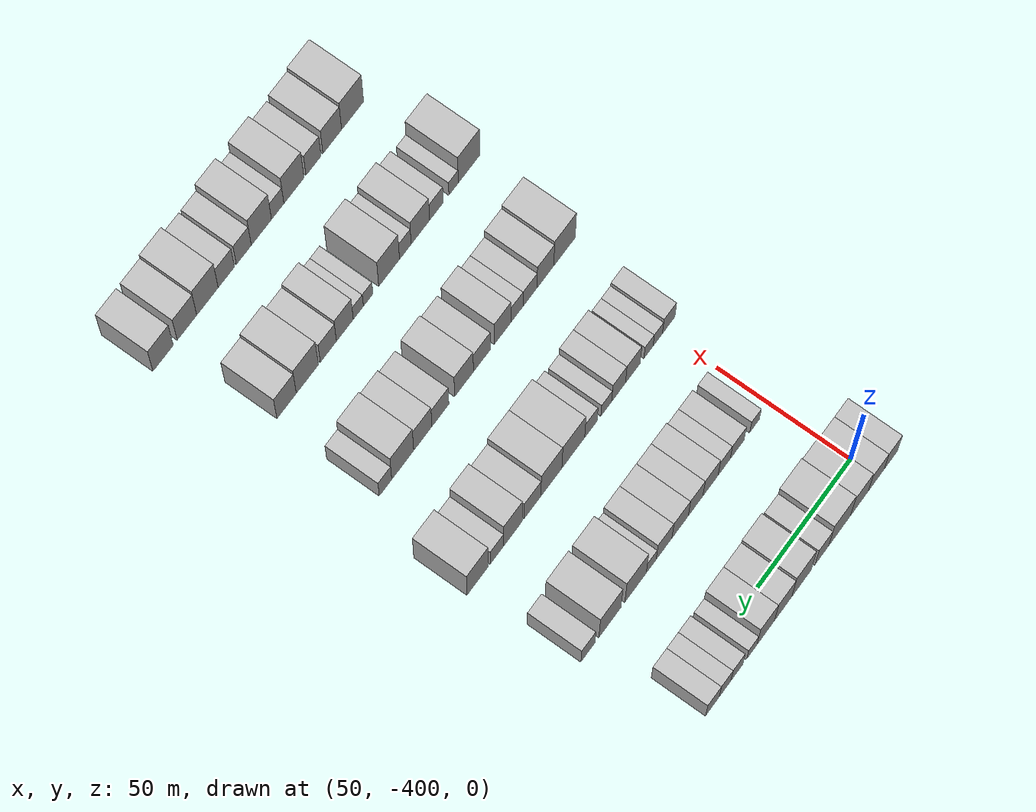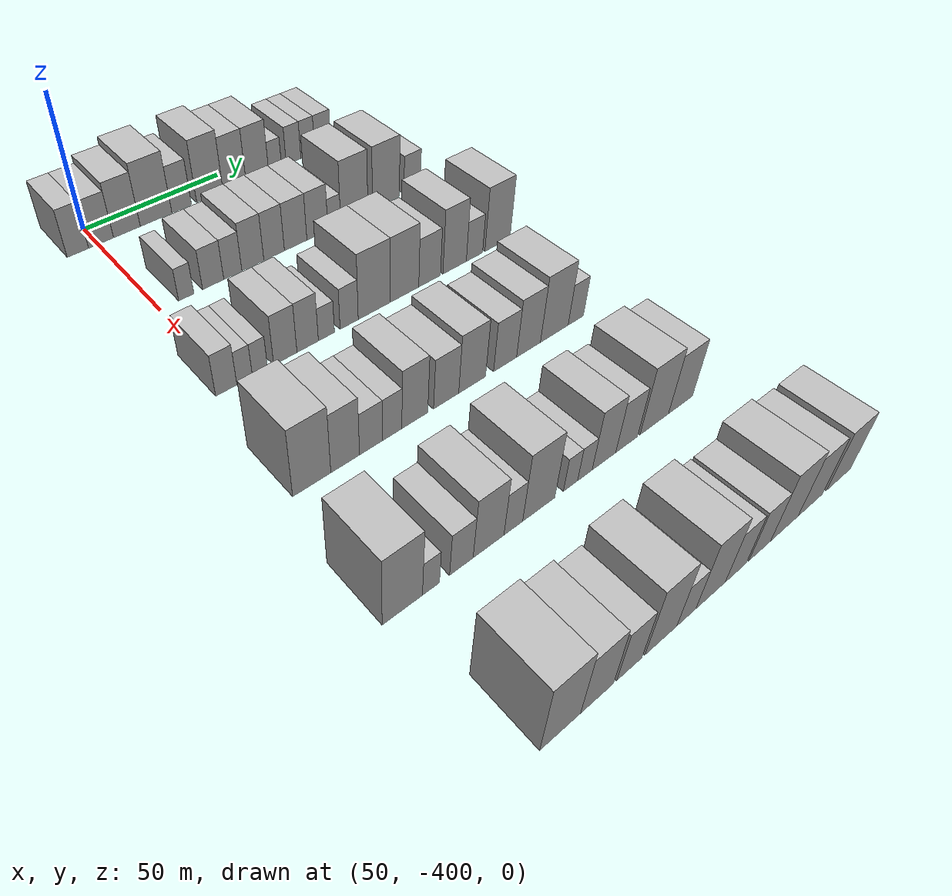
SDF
<sdf version="1.6">
 <world name="default">
  <model name="building_26">
   <static>1</static>
   <pose>50.0000 -406.8674 0 0.000000 0.000000 0.000000</pose>
   <link name="link">
    <pose>0 0 9.00 0 0 0</pose>
    <collision name="collision"><geometry><box><size>20.0000 7.2095 18.0000</size></box></geometry></collision>
    <visual name="visual">
     <cast_shadows>0</cast_shadows>
     <geometry><box><size>20.0000 7.2095 18.0000</size></box></geometry>
     <material>
      <script>
       <uri>model://HANNAS_wall/materials/scripts</uri>
       <uri>model://HANNAS_wall/materials/textures</uri>
       <name>vrc/HANNAS_wall</name>
      </script>
     </material>
    </visual>
   </link>
  </model>
  <model name="building_27">
   <static>1</static>
   <pose>50.0000 -398.9478 0 0.000000 0.000000 0.000000</pose>
   <link name="link">
    <pose>0 0 9.00 0 0 0</pose>
    <collision name="collision"><geometry><box><size>20.0000 8.6297 18.0000</size></box></geometry></collision>
    <visual name="visual">
     <cast_shadows>0</cast_shadows>
     <geometry><box><size>20.0000 8.6297 18.0000</size></box></geometry>
     <material>
      <script>
       <uri>model://HANNAS_wall/materials/scripts</uri>
       <uri>model://HANNAS_wall/materials/textures</uri>
       <name>vrc/HANNAS_wall</name>
      </script>
     </material>
    </visual>
   </link>
  </model>
  <model name="building_28">
   <static>1</static>
   <pose>50.0000 -389.8648 0 0.000000 0.000000 0.000000</pose>
   <link name="link">
    <pose>0 0 10.50 0 0 0</pose>
    <collision name="collision"><geometry><box><size>20.0000 9.5361 21.0000</size></box></geometry></collision>
    <visual name="visual">
     <cast_shadows>0</cast_shadows>
     <geometry><box><size>20.0000 9.5361 21.0000</size></box></geometry>
     <material>
      <script>
       <uri>model://HANNAS_wall/materials/scripts</uri>
       <uri>model://HANNAS_wall/materials/textures</uri>
       <name>vrc/HANNAS_wall</name>
      </script>
     </material>
    </visual>
   </link>
  </model>
  <model name="building_29">
   <static>1</static>
   <pose>50.0000 -379.2974 0 0.000000 0.000000 0.000000</pose>
   <link name="link">
    <pose>0 0 12.00 0 0 0</pose>
    <collision name="collision"><geometry><box><size>20.0000 11.5987 24.0000</size></box></geometry></collision>
    <visual name="visual">
     <cast_shadows>0</cast_shadows>
     <geometry><box><size>20.0000 11.5987 24.0000</size></box></geometry>
     <material>
      <script>
       <uri>model://HANNAS_wall/materials/scripts</uri>
       <uri>model://HANNAS_wall/materials/textures</uri>
       <name>vrc/HANNAS_wall</name>
      </script>
     </material>
    </visual>
   </link>
  </model>
  <model name="building_30">
   <static>1</static>
   <pose>50.0000 -369.7955 0 0.000000 0.000000 0.000000</pose>
   <link name="link">
    <pose>0 0 9.00 0 0 0</pose>
    <collision name="collision"><geometry><box><size>20.0000 7.4053 18.0000</size></box></geometry></collision>
    <visual name="visual">
     <cast_shadows>0</cast_shadows>
     <geometry><box><size>20.0000 7.4053 18.0000</size></box></geometry>
     <material>
      <script>
       <uri>model://HANNAS_wall/materials/scripts</uri>
       <uri>model://HANNAS_wall/materials/textures</uri>
       <name>vrc/HANNAS_wall</name>
      </script>
     </material>
    </visual>
   </link>
  </model>
  <model name="building_31">
   <static>1</static>
   <pose>50.0000 -358.9454 0 0.000000 0.000000 0.000000</pose>
   <link name="link">
    <pose>0 0 12.00 0 0 0</pose>
    <collision name="collision"><geometry><box><size>20.0000 10.2949 24.0000</size></box></geometry></collision>
    <visual name="visual">
     <cast_shadows>0</cast_shadows>
     <geometry><box><size>20.0000 10.2949 24.0000</size></box></geometry>
     <material>
      <script>
       <uri>model://HANNAS_wall/materials/scripts</uri>
       <uri>model://HANNAS_wall/materials/textures</uri>
       <name>vrc/HANNAS_wall</name>
      </script>
     </material>
    </visual>
   </link>
  </model>
  <model name="building_32">
   <static>1</static>
   <pose>50.0000 -349.2108 0 0.000000 0.000000 0.000000</pose>
   <link name="link">
    <pose>0 0 10.50 0 0 0</pose>
    <collision name="collision"><geometry><box><size>20.0000 9.1743 21.0000</size></box></geometry></collision>
    <visual name="visual">
     <cast_shadows>0</cast_shadows>
     <geometry><box><size>20.0000 9.1743 21.0000</size></box></geometry>
     <material>
      <script>
       <uri>model://HANNAS_wall/materials/scripts</uri>
       <uri>model://HANNAS_wall/materials/textures</uri>
       <name>vrc/HANNAS_wall</name>
      </script>
     </material>
    </visual>
   </link>
  </model>
  <model name="building_33">
   <static>1</static>
   <pose>50.0000 -339.9540 0 0.000000 0.000000 0.000000</pose>
   <link name="link">
    <pose>0 0 10.50 0 0 0</pose>
    <collision name="collision"><geometry><box><size>20.0000 9.3393 21.0000</size></box></geometry></collision>
    <visual name="visual">
     <cast_shadows>0</cast_shadows>
     <geometry><box><size>20.0000 9.3393 21.0000</size></box></geometry>
     <material>
      <script>
       <uri>model://HANNAS_wall/materials/scripts</uri>
       <uri>model://HANNAS_wall/materials/textures</uri>
       <name>vrc/HANNAS_wall</name>
      </script>
     </material>
    </visual>
   </link>
  </model>
  <model name="building_34">
   <static>1</static>
   <pose>50.0000 -332.5883 0 0.000000 0.000000 0.000000</pose>
   <link name="link">
    <pose>0 0 6.00 0 0 0</pose>
    <collision name="collision"><geometry><box><size>20.0000 5.3922 12.0000</size></box></geometry></collision>
    <visual name="visual">
     <cast_shadows>0</cast_shadows>
     <geometry><box><size>20.0000 5.3922 12.0000</size></box></geometry>
     <material>
      <script>
       <uri>model://HANNAS_wall/materials/scripts</uri>
       <uri>model://HANNAS_wall/materials/textures</uri>
       <name>vrc/HANNAS_wall</name>
      </script>
     </material>
    </visual>
   </link>
  </model>
  <model name="building_35">
   <static>1</static>
   <pose>50.0000 -324.7472 0 0.000000 0.000000 0.000000</pose>
   <link name="link">
    <pose>0 0 7.50 0 0 0</pose>
    <collision name="collision"><geometry><box><size>20.0000 6.2898 15.0000</size></box></geometry></collision>
    <visual name="visual">
     <cast_shadows>0</cast_shadows>
     <geometry><box><size>20.0000 6.2898 15.0000</size></box></geometry>
     <material>
      <script>
       <uri>model://HANNAS_wall/materials/scripts</uri>
       <uri>model://HANNAS_wall/materials/textures</uri>
       <name>vrc/HANNAS_wall</name>
      </script>
     </material>
    </visual>
   </link>
  </model>
  <model name="building_36">
   <static>1</static>
   <pose>50.0000 -318.5972 0 0.000000 0.000000 0.000000</pose>
   <link name="link">
    <pose>0 0 7.50 0 0 0</pose>
    <collision name="collision"><geometry><box><size>20.0000 6.0102 15.0000</size></box></geometry></collision>
    <visual name="visual">
     <cast_shadows>0</cast_shadows>
     <geometry><box><size>20.0000 6.0102 15.0000</size></box></geometry>
     <material>
      <script>
       <uri>model://HANNAS_wall/materials/scripts</uri>
       <uri>model://HANNAS_wall/materials/textures</uri>
       <name>vrc/HANNAS_wall</name>
      </script>
     </material>
    </visual>
   </link>
  </model>
  <model name="building_37">
   <static>1</static>
   <pose>50.0000 -312.0216 0 0.000000 0.000000 0.000000</pose>
   <link name="link">
    <pose>0 0 7.50 0 0 0</pose>
    <collision name="collision"><geometry><box><size>20.0000 7.1410 15.0000</size></box></geometry></collision>
    <visual name="visual">
     <cast_shadows>0</cast_shadows>
     <geometry><box><size>20.0000 7.1410 15.0000</size></box></geometry>
     <material>
      <script>
       <uri>model://HANNAS_wall/materials/scripts</uri>
       <uri>model://HANNAS_wall/materials/textures</uri>
       <name>vrc/HANNAS_wall</name>
      </script>
     </material>
    </visual>
   </link>
  </model>
  <model name="building_160">
   <static>1</static>
   <pose>90.0000 -391.2462 0 0.000000 0.000000 0.000000</pose>
   <link name="link">
    <pose>0 0 6.00 0 0 0</pose>
    <collision name="collision"><geometry><box><size>20.0000 5.1746 12.0000</size></box></geometry></collision>
    <visual name="visual">
     <cast_shadows>0</cast_shadows>
     <geometry><box><size>20.0000 5.1746 12.0000</size></box></geometry>
     <material>
      <script>
       <uri>model://HANNAS_wall/materials/scripts</uri>
       <uri>model://HANNAS_wall/materials/textures</uri>
       <name>vrc/HANNAS_wall</name>
      </script>
     </material>
    </visual>
   </link>
  </model>
  <model name="building_161">
   <static>1</static>
   <pose>90.0000 -381.9610 0 0.000000 0.000000 0.000000</pose>
   <link name="link">
    <pose>0 0 7.50 0 0 0</pose>
    <collision name="collision"><geometry><box><size>20.0000 7.3958 15.0000</size></box></geometry></collision>
    <visual name="visual">
     <cast_shadows>0</cast_shadows>
     <geometry><box><size>20.0000 7.3958 15.0000</size></box></geometry>
     <material>
      <script>
       <uri>model://HANNAS_wall/materials/scripts</uri>
       <uri>model://HANNAS_wall/materials/textures</uri>
       <name>vrc/HANNAS_wall</name>
      </script>
     </material>
    </visual>
   </link>
  </model>
  <model name="building_162">
   <static>1</static>
   <pose>90.0000 -375.0230 0 0.000000 0.000000 0.000000</pose>
   <link name="link">
    <pose>0 0 7.50 0 0 0</pose>
    <collision name="collision"><geometry><box><size>20.0000 6.4801 15.0000</size></box></geometry></collision>
    <visual name="visual">
     <cast_shadows>0</cast_shadows>
     <geometry><box><size>20.0000 6.4801 15.0000</size></box></geometry>
     <material>
      <script>
       <uri>model://HANNAS_wall/materials/scripts</uri>
       <uri>model://HANNAS_wall/materials/textures</uri>
       <name>vrc/HANNAS_wall</name>
      </script>
     </material>
    </visual>
   </link>
  </model>
  <model name="building_163">
   <static>1</static>
   <pose>90.0000 -367.7624 0 0.000000 0.000000 0.000000</pose>
   <link name="link">
    <pose>0 0 9.00 0 0 0</pose>
    <collision name="collision"><geometry><box><size>20.0000 8.0411 18.0000</size></box></geometry></collision>
    <visual name="visual">
     <cast_shadows>0</cast_shadows>
     <geometry><box><size>20.0000 8.0411 18.0000</size></box></geometry>
     <material>
      <script>
       <uri>model://HANNAS_wall/materials/scripts</uri>
       <uri>model://HANNAS_wall/materials/textures</uri>
       <name>vrc/HANNAS_wall</name>
      </script>
     </material>
    </visual>
   </link>
  </model>
  <model name="building_164">
   <static>1</static>
   <pose>90.0000 -359.8854 0 0.000000 0.000000 0.000000</pose>
   <link name="link">
    <pose>0 0 9.00 0 0 0</pose>
    <collision name="collision"><geometry><box><size>20.0000 7.7129 18.0000</size></box></geometry></collision>
    <visual name="visual">
     <cast_shadows>0</cast_shadows>
     <geometry><box><size>20.0000 7.7129 18.0000</size></box></geometry>
     <material>
      <script>
       <uri>model://HANNAS_wall/materials/scripts</uri>
       <uri>model://HANNAS_wall/materials/textures</uri>
       <name>vrc/HANNAS_wall</name>
      </script>
     </material>
    </visual>
   </link>
  </model>
  <model name="building_165">
   <static>1</static>
   <pose>90.0000 -351.7106 0 0.000000 0.000000 0.000000</pose>
   <link name="link">
    <pose>0 0 9.00 0 0 0</pose>
    <collision name="collision"><geometry><box><size>20.0000 8.6368 18.0000</size></box></geometry></collision>
    <visual name="visual">
     <cast_shadows>0</cast_shadows>
     <geometry><box><size>20.0000 8.6368 18.0000</size></box></geometry>
     <material>
      <script>
       <uri>model://HANNAS_wall/materials/scripts</uri>
       <uri>model://HANNAS_wall/materials/textures</uri>
       <name>vrc/HANNAS_wall</name>
      </script>
     </material>
    </visual>
   </link>
  </model>
  <model name="building_166">
   <static>1</static>
   <pose>90.0000 -343.2505 0 0.000000 0.000000 0.000000</pose>
   <link name="link">
    <pose>0 0 9.00 0 0 0</pose>
    <collision name="collision"><geometry><box><size>20.0000 8.2834 18.0000</size></box></geometry></collision>
    <visual name="visual">
     <cast_shadows>0</cast_shadows>
     <geometry><box><size>20.0000 8.2834 18.0000</size></box></geometry>
     <material>
      <script>
       <uri>model://HANNAS_wall/materials/scripts</uri>
       <uri>model://HANNAS_wall/materials/textures</uri>
       <name>vrc/HANNAS_wall</name>
      </script>
     </material>
    </visual>
   </link>
  </model>
  <model name="building_167">
   <static>1</static>
   <pose>90.0000 -336.5271 0 0.000000 0.000000 0.000000</pose>
   <link name="link">
    <pose>0 0 6.00 0 0 0</pose>
    <collision name="collision"><geometry><box><size>20.0000 5.1634 12.0000</size></box></geometry></collision>
    <visual name="visual">
     <cast_shadows>0</cast_shadows>
     <geometry><box><size>20.0000 5.1634 12.0000</size></box></geometry>
     <material>
      <script>
       <uri>model://HANNAS_wall/materials/scripts</uri>
       <uri>model://HANNAS_wall/materials/textures</uri>
       <name>vrc/HANNAS_wall</name>
      </script>
     </material>
    </visual>
   </link>
  </model>
  <model name="building_168">
   <static>1</static>
   <pose>90.0000 -328.3290 0 0.000000 0.000000 0.000000</pose>
   <link name="link">
    <pose>0 0 12.00 0 0 0</pose>
    <collision name="collision"><geometry><box><size>20.0000 11.2327 24.0000</size></box></geometry></collision>
    <visual name="visual">
     <cast_shadows>0</cast_shadows>
     <geometry><box><size>20.0000 11.2327 24.0000</size></box></geometry>
     <material>
      <script>
       <uri>model://HANNAS_wall/materials/scripts</uri>
       <uri>model://HANNAS_wall/materials/textures</uri>
       <name>vrc/HANNAS_wall</name>
      </script>
     </material>
    </visual>
   </link>
  </model>
  <model name="building_169">
   <static>1</static>
   <pose>90.0000 -314.9431 0 0.000000 0.000000 0.000000</pose>
   <link name="link">
    <pose>0 0 12.00 0 0 0</pose>
    <collision name="collision"><geometry><box><size>20.0000 11.5390 24.0000</size></box></geometry></collision>
    <visual name="visual">
     <cast_shadows>0</cast_shadows>
     <geometry><box><size>20.0000 11.5390 24.0000</size></box></geometry>
     <material>
      <script>
       <uri>model://HANNAS_wall/materials/scripts</uri>
       <uri>model://HANNAS_wall/materials/textures</uri>
       <name>vrc/HANNAS_wall</name>
      </script>
     </material>
    </visual>
   </link>
  </model>
  <model name="building_170">
   <static>1</static>
   <pose>90.0000 -303.5288 0 0.000000 0.000000 0.000000</pose>
   <link name="link">
    <pose>0 0 7.50 0 0 0</pose>
    <collision name="collision"><geometry><box><size>20.0000 7.2896 15.0000</size></box></geometry></collision>
    <visual name="visual">
     <cast_shadows>0</cast_shadows>
     <geometry><box><size>20.0000 7.2896 15.0000</size></box></geometry>
     <material>
      <script>
       <uri>model://HANNAS_wall/materials/scripts</uri>
       <uri>model://HANNAS_wall/materials/textures</uri>
       <name>vrc/HANNAS_wall</name>
      </script>
     </material>
    </visual>
   </link>
  </model>
  <model name="building_297">
   <static>1</static>
   <pose>130.0000 -402.1752 0 0.000000 0.000000 0.000000</pose>
   <link name="link">
    <pose>0 0 7.50 0 0 0</pose>
    <collision name="collision"><geometry><box><size>20.0000 6.6384 15.0000</size></box></geometry></collision>
    <visual name="visual">
     <cast_shadows>0</cast_shadows>
     <geometry><box><size>20.0000 6.6384 15.0000</size></box></geometry>
     <material>
      <script>
       <uri>model://HANNAS_wall/materials/scripts</uri>
       <uri>model://HANNAS_wall/materials/textures</uri>
       <name>vrc/HANNAS_wall</name>
      </script>
     </material>
    </visual>
   </link>
  </model>
  <model name="building_298">
   <static>1</static>
   <pose>130.0000 -396.3769 0 0.000000 0.000000 0.000000</pose>
   <link name="link">
    <pose>0 0 6.00 0 0 0</pose>
    <collision name="collision"><geometry><box><size>20.0000 4.9581 12.0000</size></box></geometry></collision>
    <visual name="visual">
     <cast_shadows>0</cast_shadows>
     <geometry><box><size>20.0000 4.9581 12.0000</size></box></geometry>
     <material>
      <script>
       <uri>model://HANNAS_wall/materials/scripts</uri>
       <uri>model://HANNAS_wall/materials/textures</uri>
       <name>vrc/HANNAS_wall</name>
      </script>
     </material>
    </visual>
   </link>
  </model>
  <model name="building_299">
   <static>1</static>
   <pose>130.0000 -391.4261 0 0.000000 0.000000 0.000000</pose>
   <link name="link">
    <pose>0 0 6.00 0 0 0</pose>
    <collision name="collision"><geometry><box><size>20.0000 4.9437 12.0000</size></box></geometry></collision>
    <visual name="visual">
     <cast_shadows>0</cast_shadows>
     <geometry><box><size>20.0000 4.9437 12.0000</size></box></geometry>
     <material>
      <script>
       <uri>model://HANNAS_wall/materials/scripts</uri>
       <uri>model://HANNAS_wall/materials/textures</uri>
       <name>vrc/HANNAS_wall</name>
      </script>
     </material>
    </visual>
   </link>
  </model>
  <model name="building_300">
   <static>1</static>
   <pose>130.0000 -383.0668 0 0.000000 0.000000 0.000000</pose>
   <link name="link">
    <pose>0 0 9.00 0 0 0</pose>
    <collision name="collision"><geometry><box><size>20.0000 7.7748 18.0000</size></box></geometry></collision>
    <visual name="visual">
     <cast_shadows>0</cast_shadows>
     <geometry><box><size>20.0000 7.7748 18.0000</size></box></geometry>
     <material>
      <script>
       <uri>model://HANNAS_wall/materials/scripts</uri>
       <uri>model://HANNAS_wall/materials/textures</uri>
       <name>vrc/HANNAS_wall</name>
      </script>
     </material>
    </visual>
   </link>
  </model>
  <model name="building_301">
   <static>1</static>
   <pose>130.0000 -375.5032 0 0.000000 0.000000 0.000000</pose>
   <link name="link">
    <pose>0 0 9.00 0 0 0</pose>
    <collision name="collision"><geometry><box><size>20.0000 7.3524 18.0000</size></box></geometry></collision>
    <visual name="visual">
     <cast_shadows>0</cast_shadows>
     <geometry><box><size>20.0000 7.3524 18.0000</size></box></geometry>
     <material>
      <script>
       <uri>model://HANNAS_wall/materials/scripts</uri>
       <uri>model://HANNAS_wall/materials/textures</uri>
       <name>vrc/HANNAS_wall</name>
      </script>
     </material>
    </visual>
   </link>
  </model>
  <model name="building_302">
   <static>1</static>
   <pose>130.0000 -369.0002 0 0.000000 0.000000 0.000000</pose>
   <link name="link">
    <pose>0 0 6.00 0 0 0</pose>
    <collision name="collision"><geometry><box><size>20.0000 5.6535 12.0000</size></box></geometry></collision>
    <visual name="visual">
     <cast_shadows>0</cast_shadows>
     <geometry><box><size>20.0000 5.6535 12.0000</size></box></geometry>
     <material>
      <script>
       <uri>model://HANNAS_wall/materials/scripts</uri>
       <uri>model://HANNAS_wall/materials/textures</uri>
       <name>vrc/HANNAS_wall</name>
      </script>
     </material>
    </visual>
   </link>
  </model>
  <model name="building_303">
   <static>1</static>
   <pose>130.0000 -360.8951 0 0.000000 0.000000 0.000000</pose>
   <link name="link">
    <pose>0 0 7.50 0 0 0</pose>
    <collision name="collision"><geometry><box><size>20.0000 6.5567 15.0000</size></box></geometry></collision>
    <visual name="visual">
     <cast_shadows>0</cast_shadows>
     <geometry><box><size>20.0000 6.5567 15.0000</size></box></geometry>
     <material>
      <script>
       <uri>model://HANNAS_wall/materials/scripts</uri>
       <uri>model://HANNAS_wall/materials/textures</uri>
       <name>vrc/HANNAS_wall</name>
      </script>
     </material>
    </visual>
   </link>
  </model>
  <model name="building_304">
   <static>1</static>
   <pose>130.0000 -351.6429 0 0.000000 0.000000 0.000000</pose>
   <link name="link">
    <pose>0 0 12.00 0 0 0</pose>
    <collision name="collision"><geometry><box><size>20.0000 11.9477 24.0000</size></box></geometry></collision>
    <visual name="visual">
     <cast_shadows>0</cast_shadows>
     <geometry><box><size>20.0000 11.9477 24.0000</size></box></geometry>
     <material>
      <script>
       <uri>model://HANNAS_wall/materials/scripts</uri>
       <uri>model://HANNAS_wall/materials/textures</uri>
       <name>vrc/HANNAS_wall</name>
      </script>
     </material>
    </visual>
   </link>
  </model>
  <model name="building_305">
   <static>1</static>
   <pose>130.0000 -340.1544 0 0.000000 0.000000 0.000000</pose>
   <link name="link">
    <pose>0 0 12.00 0 0 0</pose>
    <collision name="collision"><geometry><box><size>20.0000 11.0293 24.0000</size></box></geometry></collision>
    <visual name="visual">
     <cast_shadows>0</cast_shadows>
     <geometry><box><size>20.0000 11.0293 24.0000</size></box></geometry>
     <material>
      <script>
       <uri>model://HANNAS_wall/materials/scripts</uri>
       <uri>model://HANNAS_wall/materials/textures</uri>
       <name>vrc/HANNAS_wall</name>
      </script>
     </material>
    </visual>
   </link>
  </model>
  <model name="building_306">
   <static>1</static>
   <pose>130.0000 -330.2992 0 0.000000 0.000000 0.000000</pose>
   <link name="link">
    <pose>0 0 9.00 0 0 0</pose>
    <collision name="collision"><geometry><box><size>20.0000 8.6812 18.0000</size></box></geometry></collision>
    <visual name="visual">
     <cast_shadows>0</cast_shadows>
     <geometry><box><size>20.0000 8.6812 18.0000</size></box></geometry>
     <material>
      <script>
       <uri>model://HANNAS_wall/materials/scripts</uri>
       <uri>model://HANNAS_wall/materials/textures</uri>
       <name>vrc/HANNAS_wall</name>
      </script>
     </material>
    </visual>
   </link>
  </model>
  <model name="building_307">
   <static>1</static>
   <pose>130.0000 -320.1224 0 0.000000 0.000000 0.000000</pose>
   <link name="link">
    <pose>0 0 12.00 0 0 0</pose>
    <collision name="collision"><geometry><box><size>20.0000 9.6724 24.0000</size></box></geometry></collision>
    <visual name="visual">
     <cast_shadows>0</cast_shadows>
     <geometry><box><size>20.0000 9.6724 24.0000</size></box></geometry>
     <material>
      <script>
       <uri>model://HANNAS_wall/materials/scripts</uri>
       <uri>model://HANNAS_wall/materials/textures</uri>
       <name>vrc/HANNAS_wall</name>
      </script>
     </material>
    </visual>
   </link>
  </model>
  <model name="building_308">
   <static>1</static>
   <pose>130.0000 -311.8371 0 0.000000 0.000000 0.000000</pose>
   <link name="link">
    <pose>0 0 7.50 0 0 0</pose>
    <collision name="collision"><geometry><box><size>20.0000 6.8982 15.0000</size></box></geometry></collision>
    <visual name="visual">
     <cast_shadows>0</cast_shadows>
     <geometry><box><size>20.0000 6.8982 15.0000</size></box></geometry>
     <material>
      <script>
       <uri>model://HANNAS_wall/materials/scripts</uri>
       <uri>model://HANNAS_wall/materials/textures</uri>
       <name>vrc/HANNAS_wall</name>
      </script>
     </material>
    </visual>
   </link>
  </model>
  <model name="building_309">
   <static>1</static>
   <pose>130.0000 -301.9055 0 0.000000 0.000000 0.000000</pose>
   <link name="link">
    <pose>0 0 12.00 0 0 0</pose>
    <collision name="collision"><geometry><box><size>20.0000 10.9650 24.0000</size></box></geometry></collision>
    <visual name="visual">
     <cast_shadows>0</cast_shadows>
     <geometry><box><size>20.0000 10.9650 24.0000</size></box></geometry>
     <material>
      <script>
       <uri>model://HANNAS_wall/materials/scripts</uri>
       <uri>model://HANNAS_wall/materials/textures</uri>
       <name>vrc/HANNAS_wall</name>
      </script>
     </material>
    </visual>
   </link>
  </model>
  <model name="building_442">
   <static>1</static>
   <pose>170.0000 -402.6923 0 0.000000 0.000000 0.000000</pose>
   <link name="link">
    <pose>0 0 12.00 0 0 0</pose>
    <collision name="collision"><geometry><box><size>20.0000 11.4159 24.0000</size></box></geometry></collision>
    <visual name="visual">
     <cast_shadows>0</cast_shadows>
     <geometry><box><size>20.0000 11.4159 24.0000</size></box></geometry>
     <material>
      <script>
       <uri>model://HANNAS_wall/materials/scripts</uri>
       <uri>model://HANNAS_wall/materials/textures</uri>
       <name>vrc/HANNAS_wall</name>
      </script>
     </material>
    </visual>
   </link>
  </model>
  <model name="building_443">
   <static>1</static>
   <pose>170.0000 -392.5244 0 0.000000 0.000000 0.000000</pose>
   <link name="link">
    <pose>0 0 10.50 0 0 0</pose>
    <collision name="collision"><geometry><box><size>20.0000 8.9201 21.0000</size></box></geometry></collision>
    <visual name="visual">
     <cast_shadows>0</cast_shadows>
     <geometry><box><size>20.0000 8.9201 21.0000</size></box></geometry>
     <material>
      <script>
       <uri>model://HANNAS_wall/materials/scripts</uri>
       <uri>model://HANNAS_wall/materials/textures</uri>
       <name>vrc/HANNAS_wall</name>
      </script>
     </material>
    </visual>
   </link>
  </model>
  <model name="building_444">
   <static>1</static>
   <pose>170.0000 -384.3691 0 0.000000 0.000000 0.000000</pose>
   <link name="link">
    <pose>0 0 7.50 0 0 0</pose>
    <collision name="collision"><geometry><box><size>20.0000 7.3904 15.0000</size></box></geometry></collision>
    <visual name="visual">
     <cast_shadows>0</cast_shadows>
     <geometry><box><size>20.0000 7.3904 15.0000</size></box></geometry>
     <material>
      <script>
       <uri>model://HANNAS_wall/materials/scripts</uri>
       <uri>model://HANNAS_wall/materials/textures</uri>
       <name>vrc/HANNAS_wall</name>
      </script>
     </material>
    </visual>
   </link>
  </model>
  <model name="building_445">
   <static>1</static>
   <pose>170.0000 -377.5013 0 0.000000 0.000000 0.000000</pose>
   <link name="link">
    <pose>0 0 7.50 0 0 0</pose>
    <collision name="collision"><geometry><box><size>20.0000 6.3452 15.0000</size></box></geometry></collision>
    <visual name="visual">
     <cast_shadows>0</cast_shadows>
     <geometry><box><size>20.0000 6.3452 15.0000</size></box></geometry>
     <material>
      <script>
       <uri>model://HANNAS_wall/materials/scripts</uri>
       <uri>model://HANNAS_wall/materials/textures</uri>
       <name>vrc/HANNAS_wall</name>
      </script>
     </material>
    </visual>
   </link>
  </model>
  <model name="building_446">
   <static>1</static>
   <pose>170.0000 -369.9328 0 0.000000 0.000000 0.000000</pose>
   <link name="link">
    <pose>0 0 10.50 0 0 0</pose>
    <collision name="collision"><geometry><box><size>20.0000 8.7918 21.0000</size></box></geometry></collision>
    <visual name="visual">
     <cast_shadows>0</cast_shadows>
     <geometry><box><size>20.0000 8.7918 21.0000</size></box></geometry>
     <material>
      <script>
       <uri>model://HANNAS_wall/materials/scripts</uri>
       <uri>model://HANNAS_wall/materials/textures</uri>
       <name>vrc/HANNAS_wall</name>
      </script>
     </material>
    </visual>
   </link>
  </model>
  <model name="building_447">
   <static>1</static>
   <pose>170.0000 -359.0872 0 0.000000 0.000000 0.000000</pose>
   <link name="link">
    <pose>0 0 9.00 0 0 0</pose>
    <collision name="collision"><geometry><box><size>20.0000 8.8994 18.0000</size></box></geometry></collision>
    <visual name="visual">
     <cast_shadows>0</cast_shadows>
     <geometry><box><size>20.0000 8.8994 18.0000</size></box></geometry>
     <material>
      <script>
       <uri>model://HANNAS_wall/materials/scripts</uri>
       <uri>model://HANNAS_wall/materials/textures</uri>
       <name>vrc/HANNAS_wall</name>
      </script>
     </material>
    </visual>
   </link>
  </model>
  <model name="building_448">
   <static>1</static>
   <pose>170.0000 -349.7289 0 0.000000 0.000000 0.000000</pose>
   <link name="link">
    <pose>0 0 10.50 0 0 0</pose>
    <collision name="collision"><geometry><box><size>20.0000 9.8173 21.0000</size></box></geometry></collision>
    <visual name="visual">
     <cast_shadows>0</cast_shadows>
     <geometry><box><size>20.0000 9.8173 21.0000</size></box></geometry>
     <material>
      <script>
       <uri>model://HANNAS_wall/materials/scripts</uri>
       <uri>model://HANNAS_wall/materials/textures</uri>
       <name>vrc/HANNAS_wall</name>
      </script>
     </material>
    </visual>
   </link>
  </model>
  <model name="building_449">
   <static>1</static>
   <pose>170.0000 -337.4245 0 0.000000 0.000000 0.000000</pose>
   <link name="link">
    <pose>0 0 9.00 0 0 0</pose>
    <collision name="collision"><geometry><box><size>20.0000 8.7915 18.0000</size></box></geometry></collision>
    <visual name="visual">
     <cast_shadows>0</cast_shadows>
     <geometry><box><size>20.0000 8.7915 18.0000</size></box></geometry>
     <material>
      <script>
       <uri>model://HANNAS_wall/materials/scripts</uri>
       <uri>model://HANNAS_wall/materials/textures</uri>
       <name>vrc/HANNAS_wall</name>
      </script>
     </material>
    </visual>
   </link>
  </model>
  <model name="building_450">
   <static>1</static>
   <pose>170.0000 -328.3199 0 0.000000 0.000000 0.000000</pose>
   <link name="link">
    <pose>0 0 10.50 0 0 0</pose>
    <collision name="collision"><geometry><box><size>20.0000 9.4178 21.0000</size></box></geometry></collision>
    <visual name="visual">
     <cast_shadows>0</cast_shadows>
     <geometry><box><size>20.0000 9.4178 21.0000</size></box></geometry>
     <material>
      <script>
       <uri>model://HANNAS_wall/materials/scripts</uri>
       <uri>model://HANNAS_wall/materials/textures</uri>
       <name>vrc/HANNAS_wall</name>
      </script>
     </material>
    </visual>
   </link>
  </model>
  <model name="building_451">
   <static>1</static>
   <pose>170.0000 -317.9349 0 0.000000 0.000000 0.000000</pose>
   <link name="link">
    <pose>0 0 12.00 0 0 0</pose>
    <collision name="collision"><geometry><box><size>20.0000 11.3520 24.0000</size></box></geometry></collision>
    <visual name="visual">
     <cast_shadows>0</cast_shadows>
     <geometry><box><size>20.0000 11.3520 24.0000</size></box></geometry>
     <material>
      <script>
       <uri>model://HANNAS_wall/materials/scripts</uri>
       <uri>model://HANNAS_wall/materials/textures</uri>
       <name>vrc/HANNAS_wall</name>
      </script>
     </material>
    </visual>
   </link>
  </model>
  <model name="building_452">
   <static>1</static>
   <pose>170.0000 -309.0416 0 0.000000 0.000000 0.000000</pose>
   <link name="link">
    <pose>0 0 7.50 0 0 0</pose>
    <collision name="collision"><geometry><box><size>20.0000 6.4346 15.0000</size></box></geometry></collision>
    <visual name="visual">
     <cast_shadows>0</cast_shadows>
     <geometry><box><size>20.0000 6.4346 15.0000</size></box></geometry>
     <material>
      <script>
       <uri>model://HANNAS_wall/materials/scripts</uri>
       <uri>model://HANNAS_wall/materials/textures</uri>
       <name>vrc/HANNAS_wall</name>
      </script>
     </material>
    </visual>
   </link>
  </model>
  <model name="building_584">
   <static>1</static>
   <pose>210.0000 -407.2114 0 0.000000 0.000000 0.000000</pose>
   <link name="link">
    <pose>0 0 12.00 0 0 0</pose>
    <collision name="collision"><geometry><box><size>20.0000 11.3479 24.0000</size></box></geometry></collision>
    <visual name="visual">
     <cast_shadows>0</cast_shadows>
     <geometry><box><size>20.0000 11.3479 24.0000</size></box></geometry>
     <material>
      <script>
       <uri>model://HANNAS_wall/materials/scripts</uri>
       <uri>model://HANNAS_wall/materials/textures</uri>
       <name>vrc/HANNAS_wall</name>
      </script>
     </material>
    </visual>
   </link>
  </model>
  <model name="building_585">
   <static>1</static>
   <pose>210.0000 -399.0482 0 0.000000 0.000000 0.000000</pose>
   <link name="link">
    <pose>0 0 6.00 0 0 0</pose>
    <collision name="collision"><geometry><box><size>20.0000 4.9786 12.0000</size></box></geometry></collision>
    <visual name="visual">
     <cast_shadows>0</cast_shadows>
     <geometry><box><size>20.0000 4.9786 12.0000</size></box></geometry>
     <material>
      <script>
       <uri>model://HANNAS_wall/materials/scripts</uri>
       <uri>model://HANNAS_wall/materials/textures</uri>
       <name>vrc/HANNAS_wall</name>
      </script>
     </material>
    </visual>
   </link>
  </model>
  <model name="building_586">
   <static>1</static>
   <pose>210.0000 -389.9793 0 0.000000 0.000000 0.000000</pose>
   <link name="link">
    <pose>0 0 7.50 0 0 0</pose>
    <collision name="collision"><geometry><box><size>20.0000 7.1591 15.0000</size></box></geometry></collision>
    <visual name="visual">
     <cast_shadows>0</cast_shadows>
     <geometry><box><size>20.0000 7.1591 15.0000</size></box></geometry>
     <material>
      <script>
       <uri>model://HANNAS_wall/materials/scripts</uri>
       <uri>model://HANNAS_wall/materials/textures</uri>
       <name>vrc/HANNAS_wall</name>
      </script>
     </material>
    </visual>
   </link>
  </model>
  <model name="building_587">
   <static>1</static>
   <pose>210.0000 -381.5521 0 0.000000 0.000000 0.000000</pose>
   <link name="link">
    <pose>0 0 10.50 0 0 0</pose>
    <collision name="collision"><geometry><box><size>20.0000 9.6953 21.0000</size></box></geometry></collision>
    <visual name="visual">
     <cast_shadows>0</cast_shadows>
     <geometry><box><size>20.0000 9.6953 21.0000</size></box></geometry>
     <material>
      <script>
       <uri>model://HANNAS_wall/materials/scripts</uri>
       <uri>model://HANNAS_wall/materials/textures</uri>
       <name>vrc/HANNAS_wall</name>
      </script>
     </material>
    </visual>
   </link>
  </model>
  <model name="building_588">
   <static>1</static>
   <pose>210.0000 -373.6567 0 0.000000 0.000000 0.000000</pose>
   <link name="link">
    <pose>0 0 7.50 0 0 0</pose>
    <collision name="collision"><geometry><box><size>20.0000 6.0955 15.0000</size></box></geometry></collision>
    <visual name="visual">
     <cast_shadows>0</cast_shadows>
     <geometry><box><size>20.0000 6.0955 15.0000</size></box></geometry>
     <material>
      <script>
       <uri>model://HANNAS_wall/materials/scripts</uri>
       <uri>model://HANNAS_wall/materials/textures</uri>
       <name>vrc/HANNAS_wall</name>
      </script>
     </material>
    </visual>
   </link>
  </model>
  <model name="building_589">
   <static>1</static>
   <pose>210.0000 -365.1672 0 0.000000 0.000000 0.000000</pose>
   <link name="link">
    <pose>0 0 12.00 0 0 0</pose>
    <collision name="collision"><geometry><box><size>20.0000 10.8835 24.0000</size></box></geometry></collision>
    <visual name="visual">
     <cast_shadows>0</cast_shadows>
     <geometry><box><size>20.0000 10.8835 24.0000</size></box></geometry>
     <material>
      <script>
       <uri>model://HANNAS_wall/materials/scripts</uri>
       <uri>model://HANNAS_wall/materials/textures</uri>
       <name>vrc/HANNAS_wall</name>
      </script>
     </material>
    </visual>
   </link>
  </model>
  <model name="building_590">
   <static>1</static>
   <pose>210.0000 -354.2404 0 0.000000 0.000000 0.000000</pose>
   <link name="link">
    <pose>0 0 6.00 0 0 0</pose>
    <collision name="collision"><geometry><box><size>20.0000 4.9703 12.0000</size></box></geometry></collision>
    <visual name="visual">
     <cast_shadows>0</cast_shadows>
     <geometry><box><size>20.0000 4.9703 12.0000</size></box></geometry>
     <material>
      <script>
       <uri>model://HANNAS_wall/materials/scripts</uri>
       <uri>model://HANNAS_wall/materials/textures</uri>
       <name>vrc/HANNAS_wall</name>
      </script>
     </material>
    </visual>
   </link>
  </model>
  <model name="building_591">
   <static>1</static>
   <pose>210.0000 -349.1278 0 0.000000 0.000000 0.000000</pose>
   <link name="link">
    <pose>0 0 6.00 0 0 0</pose>
    <collision name="collision"><geometry><box><size>20.0000 5.2549 12.0000</size></box></geometry></collision>
    <visual name="visual">
     <cast_shadows>0</cast_shadows>
     <geometry><box><size>20.0000 5.2549 12.0000</size></box></geometry>
     <material>
      <script>
       <uri>model://HANNAS_wall/materials/scripts</uri>
       <uri>model://HANNAS_wall/materials/textures</uri>
       <name>vrc/HANNAS_wall</name>
      </script>
     </material>
    </visual>
   </link>
  </model>
  <model name="building_592">
   <static>1</static>
   <pose>210.0000 -342.1403 0 0.000000 0.000000 0.000000</pose>
   <link name="link">
    <pose>0 0 10.50 0 0 0</pose>
    <collision name="collision"><geometry><box><size>20.0000 8.7200 21.0000</size></box></geometry></collision>
    <visual name="visual">
     <cast_shadows>0</cast_shadows>
     <geometry><box><size>20.0000 8.7200 21.0000</size></box></geometry>
     <material>
      <script>
       <uri>model://HANNAS_wall/materials/scripts</uri>
       <uri>model://HANNAS_wall/materials/textures</uri>
       <name>vrc/HANNAS_wall</name>
      </script>
     </material>
    </visual>
   </link>
  </model>
  <model name="building_593">
   <static>1</static>
   <pose>210.0000 -333.5959 0 0.000000 0.000000 0.000000</pose>
   <link name="link">
    <pose>0 0 9.00 0 0 0</pose>
    <collision name="collision"><geometry><box><size>20.0000 8.3689 18.0000</size></box></geometry></collision>
    <visual name="visual">
     <cast_shadows>0</cast_shadows>
     <geometry><box><size>20.0000 8.3689 18.0000</size></box></geometry>
     <material>
      <script>
       <uri>model://HANNAS_wall/materials/scripts</uri>
       <uri>model://HANNAS_wall/materials/textures</uri>
       <name>vrc/HANNAS_wall</name>
      </script>
     </material>
    </visual>
   </link>
  </model>
  <model name="building_594">
   <static>1</static>
   <pose>210.0000 -322.7296 0 0.000000 0.000000 0.000000</pose>
   <link name="link">
    <pose>0 0 12.00 0 0 0</pose>
    <collision name="collision"><geometry><box><size>20.0000 11.3636 24.0000</size></box></geometry></collision>
    <visual name="visual">
     <cast_shadows>0</cast_shadows>
     <geometry><box><size>20.0000 11.3636 24.0000</size></box></geometry>
     <material>
      <script>
       <uri>model://HANNAS_wall/materials/scripts</uri>
       <uri>model://HANNAS_wall/materials/textures</uri>
       <name>vrc/HANNAS_wall</name>
      </script>
     </material>
    </visual>
   </link>
  </model>
  <model name="building_595">
   <static>1</static>
   <pose>210.0000 -312.0798 0 0.000000 0.000000 0.000000</pose>
   <link name="link">
    <pose>0 0 10.50 0 0 0</pose>
    <collision name="collision"><geometry><box><size>20.0000 9.9360 21.0000</size></box></geometry></collision>
    <visual name="visual">
     <cast_shadows>0</cast_shadows>
     <geometry><box><size>20.0000 9.9360 21.0000</size></box></geometry>
     <material>
      <script>
       <uri>model://HANNAS_wall/materials/scripts</uri>
       <uri>model://HANNAS_wall/materials/textures</uri>
       <name>vrc/HANNAS_wall</name>
      </script>
     </material>
    </visual>
   </link>
  </model>
  <model name="building_730">
   <static>1</static>
   <pose>250.0000 -400.0966 0 0.000000 0.000000 0.000000</pose>
   <link name="link">
    <pose>0 0 12.00 0 0 0</pose>
    <collision name="collision"><geometry><box><size>20.0000 11.5668 24.0000</size></box></geometry></collision>
    <visual name="visual">
     <cast_shadows>0</cast_shadows>
     <geometry><box><size>20.0000 11.5668 24.0000</size></box></geometry>
     <material>
      <script>
       <uri>model://HANNAS_wall/materials/scripts</uri>
       <uri>model://HANNAS_wall/materials/textures</uri>
       <name>vrc/HANNAS_wall</name>
      </script>
     </material>
    </visual>
   </link>
  </model>
  <model name="building_731">
   <static>1</static>
   <pose>250.0000 -389.4114 0 0.000000 0.000000 0.000000</pose>
   <link name="link">
    <pose>0 0 10.50 0 0 0</pose>
    <collision name="collision"><geometry><box><size>20.0000 9.8037 21.0000</size></box></geometry></collision>
    <visual name="visual">
     <cast_shadows>0</cast_shadows>
     <geometry><box><size>20.0000 9.8037 21.0000</size></box></geometry>
     <material>
      <script>
       <uri>model://HANNAS_wall/materials/scripts</uri>
       <uri>model://HANNAS_wall/materials/textures</uri>
       <name>vrc/HANNAS_wall</name>
      </script>
     </material>
    </visual>
   </link>
  </model>
  <model name="building_732">
   <static>1</static>
   <pose>250.0000 -379.5720 0 0.000000 0.000000 0.000000</pose>
   <link name="link">
    <pose>0 0 9.00 0 0 0</pose>
    <collision name="collision"><geometry><box><size>20.0000 7.8753 18.0000</size></box></geometry></collision>
    <visual name="visual">
     <cast_shadows>0</cast_shadows>
     <geometry><box><size>20.0000 7.8753 18.0000</size></box></geometry>
     <material>
      <script>
       <uri>model://HANNAS_wall/materials/scripts</uri>
       <uri>model://HANNAS_wall/materials/textures</uri>
       <name>vrc/HANNAS_wall</name>
      </script>
     </material>
    </visual>
   </link>
  </model>
  <model name="building_733">
   <static>1</static>
   <pose>250.0000 -369.3973 0 0.000000 0.000000 0.000000</pose>
   <link name="link">
    <pose>0 0 12.00 0 0 0</pose>
    <collision name="collision"><geometry><box><size>20.0000 10.4740 24.0000</size></box></geometry></collision>
    <visual name="visual">
     <cast_shadows>0</cast_shadows>
     <geometry><box><size>20.0000 10.4740 24.0000</size></box></geometry>
     <material>
      <script>
       <uri>model://HANNAS_wall/materials/scripts</uri>
       <uri>model://HANNAS_wall/materials/textures</uri>
       <name>vrc/HANNAS_wall</name>
      </script>
     </material>
    </visual>
   </link>
  </model>
  <model name="building_734">
   <static>1</static>
   <pose>250.0000 -360.9290 0 0.000000 0.000000 0.000000</pose>
   <link name="link">
    <pose>0 0 7.50 0 0 0</pose>
    <collision name="collision"><geometry><box><size>20.0000 6.4627 15.0000</size></box></geometry></collision>
    <visual name="visual">
     <cast_shadows>0</cast_shadows>
     <geometry><box><size>20.0000 6.4627 15.0000</size></box></geometry>
     <material>
      <script>
       <uri>model://HANNAS_wall/materials/scripts</uri>
       <uri>model://HANNAS_wall/materials/textures</uri>
       <name>vrc/HANNAS_wall</name>
      </script>
     </material>
    </visual>
   </link>
  </model>
  <model name="building_735">
   <static>1</static>
   <pose>250.0000 -352.4735 0 0.000000 0.000000 0.000000</pose>
   <link name="link">
    <pose>0 0 12.00 0 0 0</pose>
    <collision name="collision"><geometry><box><size>20.0000 10.4482 24.0000</size></box></geometry></collision>
    <visual name="visual">
     <cast_shadows>0</cast_shadows>
     <geometry><box><size>20.0000 10.4482 24.0000</size></box></geometry>
     <material>
      <script>
       <uri>model://HANNAS_wall/materials/scripts</uri>
       <uri>model://HANNAS_wall/materials/textures</uri>
       <name>vrc/HANNAS_wall</name>
      </script>
     </material>
    </visual>
   </link>
  </model>
  <model name="building_736">
   <static>1</static>
   <pose>250.0000 -343.3753 0 0.000000 0.000000 0.000000</pose>
   <link name="link">
    <pose>0 0 9.00 0 0 0</pose>
    <collision name="collision"><geometry><box><size>20.0000 7.7482 18.0000</size></box></geometry></collision>
    <visual name="visual">
     <cast_shadows>0</cast_shadows>
     <geometry><box><size>20.0000 7.7482 18.0000</size></box></geometry>
     <material>
      <script>
       <uri>model://HANNAS_wall/materials/scripts</uri>
       <uri>model://HANNAS_wall/materials/textures</uri>
       <name>vrc/HANNAS_wall</name>
      </script>
     </material>
    </visual>
   </link>
  </model>
  <model name="building_737">
   <static>1</static>
   <pose>250.0000 -334.3352 0 0.000000 0.000000 0.000000</pose>
   <link name="link">
    <pose>0 0 9.00 0 0 0</pose>
    <collision name="collision"><geometry><box><size>20.0000 8.3319 18.0000</size></box></geometry></collision>
    <visual name="visual">
     <cast_shadows>0</cast_shadows>
     <geometry><box><size>20.0000 8.3319 18.0000</size></box></geometry>
     <material>
      <script>
       <uri>model://HANNAS_wall/materials/scripts</uri>
       <uri>model://HANNAS_wall/materials/textures</uri>
       <name>vrc/HANNAS_wall</name>
      </script>
     </material>
    </visual>
   </link>
  </model>
  <model name="building_738">
   <static>1</static>
   <pose>250.0000 -324.6632 0 0.000000 0.000000 0.000000</pose>
   <link name="link">
    <pose>0 0 12.00 0 0 0</pose>
    <collision name="collision"><geometry><box><size>20.0000 11.0121 24.0000</size></box></geometry></collision>
    <visual name="visual">
     <cast_shadows>0</cast_shadows>
     <geometry><box><size>20.0000 11.0121 24.0000</size></box></geometry>
     <material>
      <script>
       <uri>model://HANNAS_wall/materials/scripts</uri>
       <uri>model://HANNAS_wall/materials/textures</uri>
       <name>vrc/HANNAS_wall</name>
      </script>
     </material>
    </visual>
   </link>
  </model>
  <model name="building_739">
   <static>1</static>
   <pose>250.0000 -314.1579 0 0.000000 0.000000 0.000000</pose>
   <link name="link">
    <pose>0 0 10.50 0 0 0</pose>
    <collision name="collision"><geometry><box><size>20.0000 9.9984 21.0000</size></box></geometry></collision>
    <visual name="visual">
     <cast_shadows>0</cast_shadows>
     <geometry><box><size>20.0000 9.9984 21.0000</size></box></geometry>
     <material>
      <script>
       <uri>model://HANNAS_wall/materials/scripts</uri>
       <uri>model://HANNAS_wall/materials/textures</uri>
       <name>vrc/HANNAS_wall</name>
      </script>
     </material>
    </visual>
   </link>
  </model>
  <model name="building_740">
   <static>1</static>
   <pose>250.0000 -301.9740 0 0.000000 0.000000 0.000000</pose>
   <link name="link">
    <pose>0 0 10.50 0 0 0</pose>
    <collision name="collision"><geometry><box><size>20.0000 10.3694 21.0000</size></box></geometry></collision>
    <visual name="visual">
     <cast_shadows>0</cast_shadows>
     <geometry><box><size>20.0000 10.3694 21.0000</size></box></geometry>
     <material>
      <script>
       <uri>model://HANNAS_wall/materials/scripts</uri>
       <uri>model://HANNAS_wall/materials/textures</uri>
       <name>vrc/HANNAS_wall</name>
      </script>
     </material>
    </visual>
   </link>
  </model>
 </world>
</sdf>
